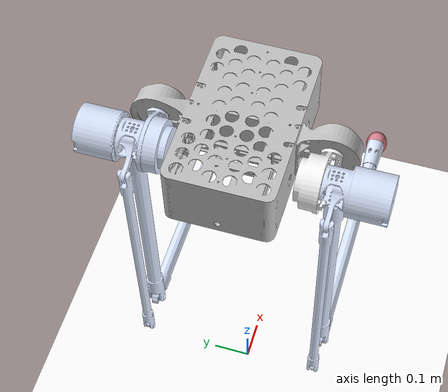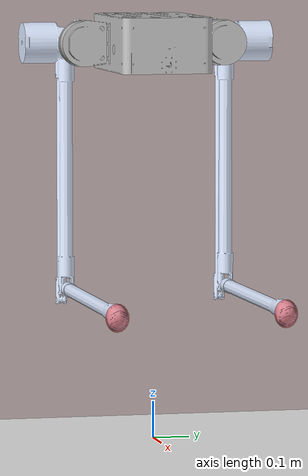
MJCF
<?xml version="1.0" encoding="utf-8"?>
<mujoco model="srl_real_bot_nobattery_isaac_identified_seed1">
  <statistic center="0 0 1" extent="2"/>

  <compiler angle="degree" meshdir="meshes_nobattery/"/>
  <option timestep="0.005" integrator="RK4"/>

  <asset>
    <mesh name="base_link" file="base_link.STL"/>
    <mesh name="left_hip_x_link" file="left_hip_x_link.STL"/>
    <mesh name="left_hip_y_link" file="left_hip_y_link.STL"/>
    <mesh name="left_knee_link" file="left_knee_link.STL"/>
    <mesh name="right_hip_x_link" file="right_hip_x_link.STL"/>
    <mesh name="right_hip_y_link" file="right_hip_y_link.STL"/>
    <mesh name="right_knee_link" file="right_knee_link.STL"/>

    <material name="blue_mat" rgba="0.86 0.91 1 1"/>
    <material name="white_mat" rgba="1 1 1 1"/>
    <material name="gray_mat" rgba="0.75294 0.75294 0.75294 1"/>
    <material name="collision_mat" rgba="0.8 0.5 0.3 0.5"/>
  </asset>

  <default>
    <joint damping="2.0" armature="0.01" limited="true" stiffness="5" type="hinge"/>
    <geom solref="0.005 1" solimp="0.9 0.95 0.001" friction="1.0 0.005 0.0001" condim="3"/>

    <default class="visual">
      <geom type="mesh" contype="0" conaffinity="0" group="2" material="blue_mat"/>
    </default>

    <default class="collision">
      <geom contype="1" conaffinity="1" group="3" material="collision_mat"/>
    </default>

    <default class="soft_foot_contact">
      <geom type="ellipsoid"
            friction="0.75 0.0045 0.001"
            solref="0.015 0.9"
            solimp="0.90 0.95 0.004"
            priority="1"
            condim="6"
            contype="1" conaffinity="1"
            group="0"
            rgba="0.9 0.1 0.1 0.45"/>
    </default>

    <motor ctrllimited="true" ctrlrange="-1 1"/>
  </default>

  <worldbody>
    <light pos="0 0 3" dir="0 0 -1" directional="true"/>
    <geom pos="0 0 0" name="floor" type="plane" size="0 0 0.1"
          material="white_mat" rgba="0.5 0.5 0.5 1"/>

    <body name="base_link" pos="0 0 1.0" euler="0 0 0">
      <freejoint/>
      <inertial pos="0.039748 0.000000027473 0.069301"
                mass="6.3604"
                fullinertia="0.14822 0.05917 0.18522 0 0.000524 0"/>

      <geom mesh="base_link" material="gray_mat" class="visual"/>
      <geom type="box" size="0.20 0.16 0.08" pos="-0.013 0 0.076" class="collision"/>

      <body name="left_hip_x_link" pos="-0.013547 0.1945 0.0745" euler="0 0 0">
        <inertial pos="-0.069216 -0.020783 0.000035018"
                  mass="1.485"
                  fullinertia="0.001612 0.002754 0.001859 -0.000087 0.000001 -0.000001"/>
        <joint name="left_hip_x_joint" axis="1 0 0" range="-25 25"
               damping="0.4882999200" frictionloss="0.7686008549"
               stiffness="0" armature="0.1018793401"/>

        <geom mesh="left_hip_x_link" class="visual"/>
        <geom type="capsule" size="0.025" fromto="-0.14 0 0 0 0 0" class="collision"/>

        <body name="left_hip_y_link" pos="-0.0750000104 -0.0007499924 0" euler="0 0 0">
          <inertial pos="-0.011585 0.058033 -0.17808"
                    mass="4.0982"
                    fullinertia="0.18128 0.1781 0.011168 -0.001291 -0.006815 -0.019831"/>
          <joint name="left_hip_y_joint" axis="0 -1 0" range="-60 20"
                 damping="3.1255776616" frictionloss="0.2367952680"
                 stiffness="0" armature="0.0301783765"/>

          <geom mesh="left_hip_y_link" class="visual"/>
          <geom type="capsule" size="0.025" fromto="0 0 0 0 0.029 -0.671" class="collision"/>

          <body name="left_knee_link" pos="0 0.0289999924 -0.6710000028" euler="0 0 0">
            <inertial pos="0.36934 -0.00000061734 0.0015106"
                      mass="0.59515"
                      fullinertia="0.000187 0.031175 0.031161 0 -0.000077 0"/>
            <joint name="left_knee_joint" axis="0 -1 0" range="-45 45"
                   damping="0.0272096803" frictionloss="1.9691575161"
                   stiffness="0" armature="0.3159289008"/>

            <geom mesh="left_knee_link" class="visual"/>
            <geom type="capsule" size="0.035" fromto="0 0 0 0.640 0 0" class="collision"/>

            <body name="left_foot" pos="0.650 0 0">
              <inertial pos="0 0 0" mass="0.06" diaginertia="0.0001 0.0001 0.0001"/>
              <geom name="left_foot_contact" class="soft_foot_contact"
                    size="0.033 0.030 0.037" pos="0.005 0 -0.0047"/>
              <site name="left_foot_touch" type="ellipsoid" size="0.033 0.030 0.037"
                    pos="0.005 0 -0.0047" rgba="0 1 0 0.2"/>
            </body>
          </body>
        </body>
      </body>

      <body name="right_hip_x_link" pos="-0.0135474328 -0.1945 0.0745" euler="0 0 0">
        <!-- The exported zero COM was invalid; use the mirrored left-link COM. -->
        <inertial pos="-0.069216 0.020783 -0.000035018"
                  mass="1.485"
                  fullinertia="0.001612 0.002754 0.001859 0.000087 -0.000001 -0.000001"/>
        <joint name="right_hip_x_joint" axis="-1 0 0" range="-25 25"
               damping="0.4882999200" frictionloss="0.7686008549"
               stiffness="0" armature="0.1018793401"/>

        <geom mesh="right_hip_x_link" material="white_mat" class="visual"/>
        <geom type="capsule" size="0.025" fromto="-0.14 0 0 0 0 0" class="collision"/>

        <body name="right_hip_y_link" pos="-0.075 0.00075 0" euler="0 0 0">
          <inertial pos="-0.011585 -0.057741 -0.17808"
                    mass="4.0982"
                    fullinertia="0.18134 0.1781 0.011233 0.001305 -0.00681 0.020127"/>
          <joint name="right_hip_y_joint" axis="0 -1 0" range="-60 20"
                 damping="3.1255776616" frictionloss="0.2367952680"
                 stiffness="0" armature="0.0301783765"/>

          <geom mesh="right_hip_y_link" class="visual"/>
          <geom type="capsule" size="0.025" fromto="0 0 0 0 -0.029 -0.671" class="collision"/>

          <body name="right_knee_link" pos="0 -0.029 -0.671" euler="90 0 0">
            <inertial pos="0.36934 0.0015106 0.00000061737"
                      mass="0.59515"
                      fullinertia="0.000187 0.031161 0.031175 -0.000077 0 0"/>
            <joint name="right_knee_joint" axis="0 0 1" range="-45 45"
                   damping="0.0272096803" frictionloss="1.9691575161"
                   stiffness="0" armature="0.3159289008"/>

            <geom mesh="right_knee_link" class="visual"/>
            <geom type="capsule" size="0.035" fromto="0 0 0 0.640 0 0" class="collision"/>

            <body name="right_foot" pos="0.650 0 0">
              <inertial pos="0 0 0" mass="0.06" diaginertia="0.0001 0.0001 0.0001"/>
              <geom name="right_foot_contact" class="soft_foot_contact"
                    size="0.033 0.037 0.030" pos="0.005 -0.0047 0"/>
              <site name="right_foot_touch" type="ellipsoid" size="0.033 0.037 0.030"
                    pos="0.005 -0.0047 0" rgba="0 1 0 0.2"/>
            </body>
          </body>
        </body>
      </body>
    </body>
  </worldbody>

  <actuator>
    <motor name="left_hip_x_torque" joint="left_hip_x_joint" gear="450"/>
    <motor name="left_hip_y_torque" joint="left_hip_y_joint" gear="450"/>
    <motor name="left_knee_torque" joint="left_knee_joint" gear="450"/>

    <motor name="right_hip_x_torque" joint="right_hip_x_joint" gear="450"/>
    <motor name="right_hip_y_torque" joint="right_hip_y_joint" gear="450"/>
    <motor name="right_knee_torque" joint="right_knee_joint" gear="450"/>
  </actuator>
</mujoco>
